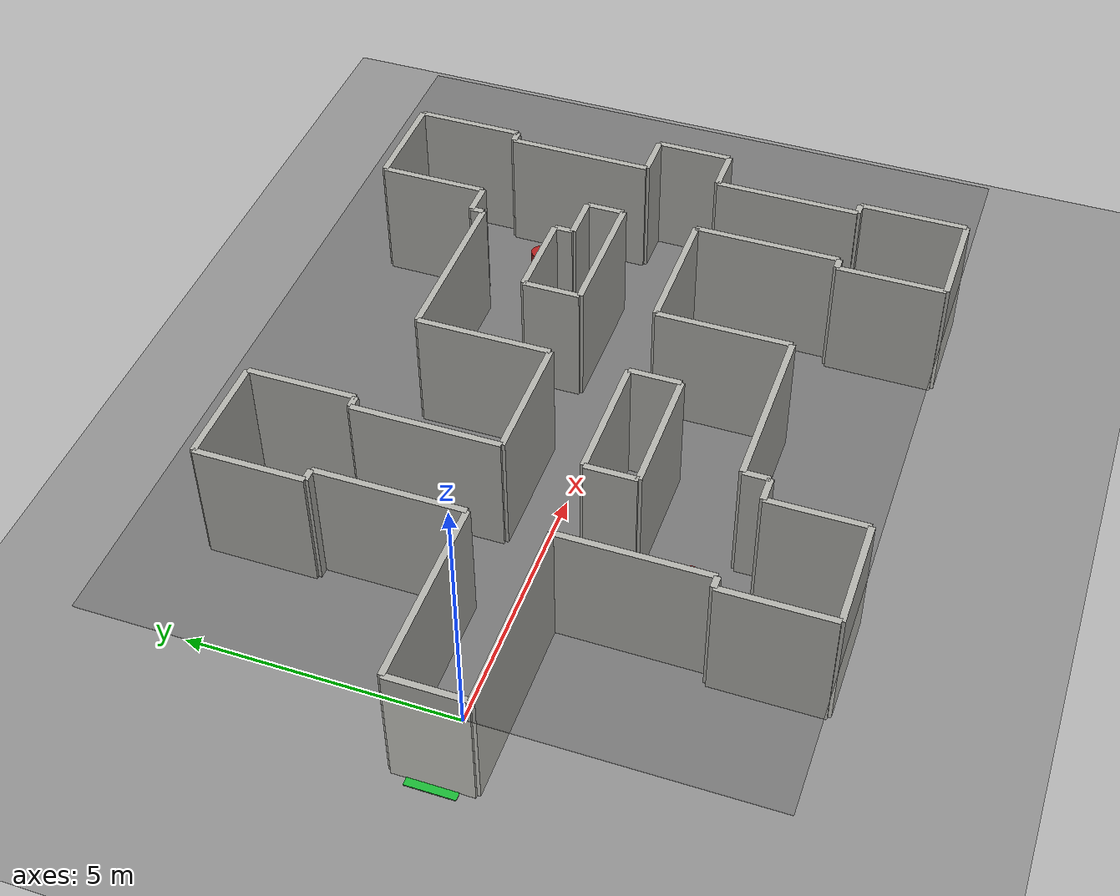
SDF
<sdf version="1.9">
 <world name="nidar_maze_world">
  <physics name="1ms" type="ignore">
   <max_step_size>0.001</max_step_size>
   <real_time_factor>1.0</real_time_factor>
  </physics>
  <plugin filename="gz-sim-physics-system" name="gz::sim::systems::Physics"/>
  <plugin filename="gz-sim-sensors-system" name="gz::sim::systems::Sensors">
   <render_engine>ogre2</render_engine>
  </plugin>
  <plugin filename="gz-sim-user-commands-system" name="gz::sim::systems::UserCommands"/>
  <plugin filename="gz-sim-scene-broadcaster-system" name="gz::sim::systems::SceneBroadcaster"/>
  <plugin filename="gz-sim-imu-system" name="gz::sim::systems::Imu"/>
  <plugin filename="gz-sim-navsat-system" name="gz::sim::systems::NavSat"/>
  <scene><ambient>1.0 1.0 1.0</ambient><background>0.6 0.8 0.9</background></scene>
  <light type="directional" name="sun">
   <pose>0 0 15 0 0 0</pose>
   <diffuse>0.95 0.95 0.95 1</diffuse>
   <specular>0.5 0.5 0.5 1</specular>
   <direction>-0.5 0.2 -0.8</direction>
  </light>
  <model name="ground_plane">
   <static>true</static>
   <link name="link">
    <collision name="collision">
     <geometry><plane><normal>0 0 1</normal><size>16 13</size></plane></geometry>
    </collision>
    <visual name="visual">
     <geometry><plane><normal>0 0 1</normal><size>16 13</size></plane></geometry>
     <material>
      <ambient>0.55 0.55 0.55 1</ambient>
      <diffuse>0.55 0.55 0.55 1</diffuse>
      <specular>0.1 0.1 0.1 1</specular>
     </material>
    </visual>
   </link>
  </model>
  <model name="maze_structure">
   <static>true</static>
   <link name="wall_v1">
    <pose>-1.24 -0.0 1.225 0 0 0</pose>
    <collision name="c"><geometry><box><size>0.12 1.44 2.45</size></box></geometry></collision>
    <visual name="v">
     <geometry><box><size>0.12 1.44 2.45</size></box></geometry>
     <material><ambient>0.85 0.85 0.82 1</ambient><diffuse>0.85 0.85 0.82 1</diffuse></material>
    </visual>
   </link>
   <link name="wall_v2">
    <pose>2.0 -4.5 1.225 0 0 0</pose>
    <collision name="c"><geometry><box><size>0.12 2.04 2.45</size></box></geometry></collision>
    <visual name="v">
     <geometry><box><size>0.12 2.04 2.45</size></box></geometry>
     <material><ambient>0.85 0.85 0.82 1</ambient><diffuse>0.85 0.85 0.82 1</diffuse></material>
    </visual>
   </link>
   <link name="wall_v3">
    <pose>2.0 4.5 1.225 0 0 0</pose>
    <collision name="c"><geometry><box><size>0.12 2.04 2.45</size></box></geometry></collision>
    <visual name="v">
     <geometry><box><size>0.12 2.04 2.45</size></box></geometry>
     <material><ambient>0.85 0.85 0.82 1</ambient><diffuse>0.85 0.85 0.82 1</diffuse></material>
    </visual>
   </link>
   <link name="wall_v4">
    <pose>2.24 -2.1 1.225 0 0 0</pose>
    <collision name="c"><geometry><box><size>0.12 2.76 2.45</size></box></geometry></collision>
    <visual name="v">
     <geometry><box><size>0.12 2.76 2.45</size></box></geometry>
     <material><ambient>0.85 0.85 0.82 1</ambient><diffuse>0.85 0.85 0.82 1</diffuse></material>
    </visual>
   </link>
   <link name="wall_v5">
    <pose>2.24 2.1 1.225 0 0 0</pose>
    <collision name="c"><geometry><box><size>0.12 2.76 2.45</size></box></geometry></collision>
    <visual name="v">
     <geometry><box><size>0.12 2.76 2.45</size></box></geometry>
     <material><ambient>0.85 0.85 0.82 1</ambient><diffuse>0.85 0.85 0.82 1</diffuse></material>
    </visual>
   </link>
   <link name="wall_v6">
    <pose>3.8 -1.2 1.225 0 0 0</pose>
    <collision name="c"><geometry><box><size>0.12 0.96 2.45</size></box></geometry></collision>
    <visual name="v">
     <geometry><box><size>0.12 0.96 2.45</size></box></geometry>
     <material><ambient>0.85 0.85 0.82 1</ambient><diffuse>0.85 0.85 0.82 1</diffuse></material>
    </visual>
   </link>
   <link name="wall_v7">
    <pose>3.8 2.1 1.225 0 0 0</pose>
    <collision name="c"><geometry><box><size>0.12 2.76 2.45</size></box></geometry></collision>
    <visual name="v">
     <geometry><box><size>0.12 2.76 2.45</size></box></geometry>
     <material><ambient>0.85 0.85 0.82 1</ambient><diffuse>0.85 0.85 0.82 1</diffuse></material>
    </visual>
   </link>
   <link name="wall_v8">
    <pose>4.04 -4.62 1.225 0 0 0</pose>
    <collision name="c"><geometry><box><size>0.12 1.8 2.45</size></box></geometry></collision>
    <visual name="v">
     <geometry><box><size>0.12 1.8 2.45</size></box></geometry>
     <material><ambient>0.85 0.85 0.82 1</ambient><diffuse>0.85 0.85 0.82 1</diffuse></material>
    </visual>
   </link>
   <link name="wall_v9">
    <pose>4.04 4.5 1.225 0 0 0</pose>
    <collision name="c"><geometry><box><size>0.12 2.04 2.45</size></box></geometry></collision>
    <visual name="v">
     <geometry><box><size>0.12 2.04 2.45</size></box></geometry>
     <material><ambient>0.85 0.85 0.82 1</ambient><diffuse>0.85 0.85 0.82 1</diffuse></material>
    </visual>
   </link>
   <link name="wall_v10">
    <pose>4.52 -3.48 1.225 0 0 0</pose>
    <collision name="c"><geometry><box><size>0.12 0.48 2.45</size></box></geometry></collision>
    <visual name="v">
     <geometry><box><size>0.12 0.48 2.45</size></box></geometry>
     <material><ambient>0.85 0.85 0.82 1</ambient><diffuse>0.85 0.85 0.82 1</diffuse></material>
    </visual>
   </link>
   <link name="wall_v11">
    <pose>6.2 -1.2 1.225 0 0 0</pose>
    <collision name="c"><geometry><box><size>0.12 0.96 2.45</size></box></geometry></collision>
    <visual name="v">
     <geometry><box><size>0.12 0.96 2.45</size></box></geometry>
     <material><ambient>0.85 0.85 0.82 1</ambient><diffuse>0.85 0.85 0.82 1</diffuse></material>
    </visual>
   </link>
   <link name="wall_v12">
    <pose>6.2 1.98 1.225 0 0 0</pose>
    <collision name="c"><geometry><box><size>0.12 2.52 2.45</size></box></geometry></collision>
    <visual name="v">
     <geometry><box><size>0.12 2.52 2.45</size></box></geometry>
     <material><ambient>0.85 0.85 0.82 1</ambient><diffuse>0.85 0.85 0.82 1</diffuse></material>
    </visual>
   </link>
   <link name="wall_v13">
    <pose>7.76 -1.98 1.225 0 0 0</pose>
    <collision name="c"><geometry><box><size>0.12 2.52 2.45</size></box></geometry></collision>
    <visual name="v">
     <geometry><box><size>0.12 2.52 2.45</size></box></geometry>
     <material><ambient>0.85 0.85 0.82 1</ambient><diffuse>0.85 0.85 0.82 1</diffuse></material>
    </visual>
   </link>
   <link name="wall_v14">
    <pose>7.76 1.26 1.225 0 0 0</pose>
    <collision name="c"><geometry><box><size>0.12 1.08 2.45</size></box></geometry></collision>
    <visual name="v">
     <geometry><box><size>0.12 1.08 2.45</size></box></geometry>
     <material><ambient>0.85 0.85 0.82 1</ambient><diffuse>0.85 0.85 0.82 1</diffuse></material>
    </visual>
   </link>
   <link name="wall_v15">
    <pose>9.44 1.62 1.225 0 0 0</pose>
    <collision name="c"><geometry><box><size>0.12 0.36 2.45</size></box></geometry></collision>
    <visual name="v">
     <geometry><box><size>0.12 0.36 2.45</size></box></geometry>
     <material><ambient>0.85 0.85 0.82 1</ambient><diffuse>0.85 0.85 0.82 1</diffuse></material>
    </visual>
   </link>
   <link name="wall_v16">
    <pose>9.44 3.36 1.225 0 0 0</pose>
    <collision name="c"><geometry><box><size>0.12 0.24 2.45</size></box></geometry></collision>
    <visual name="v">
     <geometry><box><size>0.12 0.24 2.45</size></box></geometry>
     <material><ambient>0.85 0.85 0.82 1</ambient><diffuse>0.85 0.85 0.82 1</diffuse></material>
    </visual>
   </link>
   <link name="wall_v17">
    <pose>10.04 -4.5 1.225 0 0 0</pose>
    <collision name="c"><geometry><box><size>0.12 2.04 2.45</size></box></geometry></collision>
    <visual name="v">
     <geometry><box><size>0.12 2.04 2.45</size></box></geometry>
     <material><ambient>0.85 0.85 0.82 1</ambient><diffuse>0.85 0.85 0.82 1</diffuse></material>
    </visual>
   </link>
   <link name="wall_v18">
    <pose>10.04 4.5 1.225 0 0 0</pose>
    <collision name="c"><geometry><box><size>0.12 2.04 2.45</size></box></geometry></collision>
    <visual name="v">
     <geometry><box><size>0.12 2.04 2.45</size></box></geometry>
     <material><ambient>0.85 0.85 0.82 1</ambient><diffuse>0.85 0.85 0.82 1</diffuse></material>
    </visual>
   </link>
   <link name="wall_v19">
    <pose>10.28 -2.1 1.225 0 0 0</pose>
    <collision name="c"><geometry><box><size>0.12 2.76 2.45</size></box></geometry></collision>
    <visual name="v">
     <geometry><box><size>0.12 2.76 2.45</size></box></geometry>
     <material><ambient>0.85 0.85 0.82 1</ambient><diffuse>0.85 0.85 0.82 1</diffuse></material>
    </visual>
   </link>
   <link name="wall_v20">
    <pose>10.28 1.08 1.225 0 0 0</pose>
    <collision name="c"><geometry><box><size>0.12 0.72 2.45</size></box></geometry></collision>
    <visual name="v">
     <geometry><box><size>0.12 0.72 2.45</size></box></geometry>
     <material><ambient>0.85 0.85 0.82 1</ambient><diffuse>0.85 0.85 0.82 1</diffuse></material>
    </visual>
   </link>
   <link name="wall_v21">
    <pose>11.72 -2.1 1.225 0 0 0</pose>
    <collision name="c"><geometry><box><size>0.12 2.76 2.45</size></box></geometry></collision>
    <visual name="v">
     <geometry><box><size>0.12 2.76 2.45</size></box></geometry>
     <material><ambient>0.85 0.85 0.82 1</ambient><diffuse>0.85 0.85 0.82 1</diffuse></material>
    </visual>
   </link>
   <link name="wall_v22">
    <pose>11.72 2.1 1.225 0 0 0</pose>
    <collision name="c"><geometry><box><size>0.12 2.76 2.45</size></box></geometry></collision>
    <visual name="v">
     <geometry><box><size>0.12 2.76 2.45</size></box></geometry>
     <material><ambient>0.85 0.85 0.82 1</ambient><diffuse>0.85 0.85 0.82 1</diffuse></material>
    </visual>
   </link>
   <link name="wall_v23">
    <pose>11.96 -4.5 1.225 0 0 0</pose>
    <collision name="c"><geometry><box><size>0.12 2.04 2.45</size></box></geometry></collision>
    <visual name="v">
     <geometry><box><size>0.12 2.04 2.45</size></box></geometry>
     <material><ambient>0.85 0.85 0.82 1</ambient><diffuse>0.85 0.85 0.82 1</diffuse></material>
    </visual>
   </link>
   <link name="wall_v24">
    <pose>11.96 4.5 1.225 0 0 0</pose>
    <collision name="c"><geometry><box><size>0.12 2.04 2.45</size></box></geometry></collision>
    <visual name="v">
     <geometry><box><size>0.12 2.04 2.45</size></box></geometry>
     <material><ambient>0.85 0.85 0.82 1</ambient><diffuse>0.85 0.85 0.82 1</diffuse></material>
    </visual>
   </link>
   <link name="wall_v25">
    <pose>12.56 -0.0 1.225 0 0 0</pose>
    <collision name="c"><geometry><box><size>0.12 1.44 2.45</size></box></geometry></collision>
    <visual name="v">
     <geometry><box><size>0.12 1.44 2.45</size></box></geometry>
     <material><ambient>0.85 0.85 0.82 1</ambient><diffuse>0.85 0.85 0.82 1</diffuse></material>
    </visual>
   </link>
   <link name="wall_h26">
    <pose>3.02 -5.52 1.225 0 0 0</pose>
    <collision name="c"><geometry><box><size>2.04 0.12 2.45</size></box></geometry></collision>
    <visual name="v">
     <geometry><box><size>2.04 0.12 2.45</size></box></geometry>
     <material><ambient>0.85 0.85 0.82 1</ambient><diffuse>0.85 0.85 0.82 1</diffuse></material>
    </visual>
   </link>
   <link name="wall_h27">
    <pose>11.0 -5.52 1.225 0 0 0</pose>
    <collision name="c"><geometry><box><size>1.92 0.12 2.45</size></box></geometry></collision>
    <visual name="v">
     <geometry><box><size>1.92 0.12 2.45</size></box></geometry>
     <material><ambient>0.85 0.85 0.82 1</ambient><diffuse>0.85 0.85 0.82 1</diffuse></material>
    </visual>
   </link>
   <link name="wall_h28">
    <pose>4.28 -3.72 1.225 0 0 0</pose>
    <collision name="c"><geometry><box><size>0.48 0.12 2.45</size></box></geometry></collision>
    <visual name="v">
     <geometry><box><size>0.48 0.12 2.45</size></box></geometry>
     <material><ambient>0.85 0.85 0.82 1</ambient><diffuse>0.85 0.85 0.82 1</diffuse></material>
    </visual>
   </link>
   <link name="wall_h29">
    <pose>2.12 -3.48 1.225 0 0 0</pose>
    <collision name="c"><geometry><box><size>0.24 0.12 2.45</size></box></geometry></collision>
    <visual name="v">
     <geometry><box><size>0.24 0.12 2.45</size></box></geometry>
     <material><ambient>0.85 0.85 0.82 1</ambient><diffuse>0.85 0.85 0.82 1</diffuse></material>
    </visual>
   </link>
   <link name="wall_h30">
    <pose>10.16 -3.48 1.225 0 0 0</pose>
    <collision name="c"><geometry><box><size>0.24 0.12 2.45</size></box></geometry></collision>
    <visual name="v">
     <geometry><box><size>0.24 0.12 2.45</size></box></geometry>
     <material><ambient>0.85 0.85 0.82 1</ambient><diffuse>0.85 0.85 0.82 1</diffuse></material>
    </visual>
   </link>
   <link name="wall_h31">
    <pose>11.84 -3.48 1.225 0 0 0</pose>
    <collision name="c"><geometry><box><size>0.24 0.12 2.45</size></box></geometry></collision>
    <visual name="v">
     <geometry><box><size>0.24 0.12 2.45</size></box></geometry>
     <material><ambient>0.85 0.85 0.82 1</ambient><diffuse>0.85 0.85 0.82 1</diffuse></material>
    </visual>
   </link>
   <link name="wall_h32">
    <pose>6.14 -3.24 1.225 0 0 0</pose>
    <collision name="c"><geometry><box><size>3.24 0.12 2.45</size></box></geometry></collision>
    <visual name="v">
     <geometry><box><size>3.24 0.12 2.45</size></box></geometry>
     <material><ambient>0.85 0.85 0.82 1</ambient><diffuse>0.85 0.85 0.82 1</diffuse></material>
    </visual>
   </link>
   <link name="wall_h33">
    <pose>5.0 -1.68 1.225 0 0 0</pose>
    <collision name="c"><geometry><box><size>2.4 0.12 2.45</size></box></geometry></collision>
    <visual name="v">
     <geometry><box><size>2.4 0.12 2.45</size></box></geometry>
     <material><ambient>0.85 0.85 0.82 1</ambient><diffuse>0.85 0.85 0.82 1</diffuse></material>
    </visual>
   </link>
   <link name="wall_h34">
    <pose>0.5 -0.72 1.225 0 0 0</pose>
    <collision name="c"><geometry><box><size>3.48 0.12 2.45</size></box></geometry></collision>
    <visual name="v">
     <geometry><box><size>3.48 0.12 2.45</size></box></geometry>
     <material><ambient>0.85 0.85 0.82 1</ambient><diffuse>0.85 0.85 0.82 1</diffuse></material>
    </visual>
   </link>
   <link name="wall_h35">
    <pose>5.0 -0.72 1.225 0 0 0</pose>
    <collision name="c"><geometry><box><size>2.4 0.12 2.45</size></box></geometry></collision>
    <visual name="v">
     <geometry><box><size>2.4 0.12 2.45</size></box></geometry>
     <material><ambient>0.85 0.85 0.82 1</ambient><diffuse>0.85 0.85 0.82 1</diffuse></material>
    </visual>
   </link>
   <link name="wall_h36">
    <pose>9.02 -0.72 1.225 0 0 0</pose>
    <collision name="c"><geometry><box><size>2.52 0.12 2.45</size></box></geometry></collision>
    <visual name="v">
     <geometry><box><size>2.52 0.12 2.45</size></box></geometry>
     <material><ambient>0.85 0.85 0.82 1</ambient><diffuse>0.85 0.85 0.82 1</diffuse></material>
    </visual>
   </link>
   <link name="wall_h37">
    <pose>12.14 -0.72 1.225 0 0 0</pose>
    <collision name="c"><geometry><box><size>0.84 0.12 2.45</size></box></geometry></collision>
    <visual name="v">
     <geometry><box><size>0.84 0.12 2.45</size></box></geometry>
     <material><ambient>0.85 0.85 0.82 1</ambient><diffuse>0.85 0.85 0.82 1</diffuse></material>
    </visual>
   </link>
   <link name="wall_h38">
    <pose>0.5 0.72 1.225 0 0 0</pose>
    <collision name="c"><geometry><box><size>3.48 0.12 2.45</size></box></geometry></collision>
    <visual name="v">
     <geometry><box><size>3.48 0.12 2.45</size></box></geometry>
     <material><ambient>0.85 0.85 0.82 1</ambient><diffuse>0.85 0.85 0.82 1</diffuse></material>
    </visual>
   </link>
   <link name="wall_h39">
    <pose>5.0 0.72 1.225 0 0 0</pose>
    <collision name="c"><geometry><box><size>2.4 0.12 2.45</size></box></geometry></collision>
    <visual name="v">
     <geometry><box><size>2.4 0.12 2.45</size></box></geometry>
     <material><ambient>0.85 0.85 0.82 1</ambient><diffuse>0.85 0.85 0.82 1</diffuse></material>
    </visual>
   </link>
   <link name="wall_h40">
    <pose>9.02 0.72 1.225 0 0 0</pose>
    <collision name="c"><geometry><box><size>2.52 0.12 2.45</size></box></geometry></collision>
    <visual name="v">
     <geometry><box><size>2.52 0.12 2.45</size></box></geometry>
     <material><ambient>0.85 0.85 0.82 1</ambient><diffuse>0.85 0.85 0.82 1</diffuse></material>
    </visual>
   </link>
   <link name="wall_h41">
    <pose>12.14 0.72 1.225 0 0 0</pose>
    <collision name="c"><geometry><box><size>0.84 0.12 2.45</size></box></geometry></collision>
    <visual name="v">
     <geometry><box><size>0.84 0.12 2.45</size></box></geometry>
     <material><ambient>0.85 0.85 0.82 1</ambient><diffuse>0.85 0.85 0.82 1</diffuse></material>
    </visual>
   </link>
   <link name="wall_h42">
    <pose>9.86 1.44 1.225 0 0 0</pose>
    <collision name="c"><geometry><box><size>0.84 0.12 2.45</size></box></geometry></collision>
    <visual name="v">
     <geometry><box><size>0.84 0.12 2.45</size></box></geometry>
     <material><ambient>0.85 0.85 0.82 1</ambient><diffuse>0.85 0.85 0.82 1</diffuse></material>
    </visual>
   </link>
   <link name="wall_h43">
    <pose>8.6 1.8 1.225 0 0 0</pose>
    <collision name="c"><geometry><box><size>1.68 0.12 2.45</size></box></geometry></collision>
    <visual name="v">
     <geometry><box><size>1.68 0.12 2.45</size></box></geometry>
     <material><ambient>0.85 0.85 0.82 1</ambient><diffuse>0.85 0.85 0.82 1</diffuse></material>
    </visual>
   </link>
   <link name="wall_h44">
    <pose>7.82 3.24 1.225 0 0 0</pose>
    <collision name="c"><geometry><box><size>3.24 0.12 2.45</size></box></geometry></collision>
    <visual name="v">
     <geometry><box><size>3.24 0.12 2.45</size></box></geometry>
     <material><ambient>0.85 0.85 0.82 1</ambient><diffuse>0.85 0.85 0.82 1</diffuse></material>
    </visual>
   </link>
   <link name="wall_h45">
    <pose>2.12 3.48 1.225 0 0 0</pose>
    <collision name="c"><geometry><box><size>0.24 0.12 2.45</size></box></geometry></collision>
    <visual name="v">
     <geometry><box><size>0.24 0.12 2.45</size></box></geometry>
     <material><ambient>0.85 0.85 0.82 1</ambient><diffuse>0.85 0.85 0.82 1</diffuse></material>
    </visual>
   </link>
   <link name="wall_h46">
    <pose>3.92 3.48 1.225 0 0 0</pose>
    <collision name="c"><geometry><box><size>0.24 0.12 2.45</size></box></geometry></collision>
    <visual name="v">
     <geometry><box><size>0.24 0.12 2.45</size></box></geometry>
     <material><ambient>0.85 0.85 0.82 1</ambient><diffuse>0.85 0.85 0.82 1</diffuse></material>
    </visual>
   </link>
   <link name="wall_h47">
    <pose>9.74 3.48 1.225 0 0 0</pose>
    <collision name="c"><geometry><box><size>0.6 0.12 2.45</size></box></geometry></collision>
    <visual name="v">
     <geometry><box><size>0.6 0.12 2.45</size></box></geometry>
     <material><ambient>0.85 0.85 0.82 1</ambient><diffuse>0.85 0.85 0.82 1</diffuse></material>
    </visual>
   </link>
   <link name="wall_h48">
    <pose>11.84 3.48 1.225 0 0 0</pose>
    <collision name="c"><geometry><box><size>0.24 0.12 2.45</size></box></geometry></collision>
    <visual name="v">
     <geometry><box><size>0.24 0.12 2.45</size></box></geometry>
     <material><ambient>0.85 0.85 0.82 1</ambient><diffuse>0.85 0.85 0.82 1</diffuse></material>
    </visual>
   </link>
   <link name="wall_h49">
    <pose>3.02 5.52 1.225 0 0 0</pose>
    <collision name="c"><geometry><box><size>2.04 0.12 2.45</size></box></geometry></collision>
    <visual name="v">
     <geometry><box><size>2.04 0.12 2.45</size></box></geometry>
     <material><ambient>0.85 0.85 0.82 1</ambient><diffuse>0.85 0.85 0.82 1</diffuse></material>
    </visual>
   </link>
   <link name="wall_h50">
    <pose>11.0 5.52 1.225 0 0 0</pose>
    <collision name="c"><geometry><box><size>1.92 0.12 2.45</size></box></geometry></collision>
    <visual name="v">
     <geometry><box><size>1.92 0.12 2.45</size></box></geometry>
     <material><ambient>0.85 0.85 0.82 1</ambient><diffuse>0.85 0.85 0.82 1</diffuse></material>
    </visual>
   </link>
  </model>
  <model name="arena_net_cover">
   <static>true</static>
   <link name="net">
    <pose>5.8 0.0 2.48 0 0 0</pose>
    <visual name="v">
     <geometry><box><size>14.799999999999999 11.4 0.03</size></box></geometry>
     <material>
      <ambient>0.2 0.2 0.2 0.25</ambient>
      <diffuse>0.2 0.2 0.2 0.25</diffuse>
      <specular>0.1 0.1 0.1 0.1</specular>
     </material>
    </visual>
   </link>
  </model>
  <model name="survivor_1">
   <static>true</static>
   <pose>3.0 4.5 0.4 0 0 0</pose>
   <link name="body">
    <visual name="v">
     <geometry><cylinder><radius>0.18</radius><length>0.8</length></cylinder></geometry>
     <material><ambient>0.85 0.1 0.1 1</ambient><diffuse>0.85 0.1 0.1 1</diffuse></material>
    </visual>
    <collision name="c">
     <geometry><cylinder><radius>0.18</radius><length>0.8</length></cylinder></geometry>
    </collision>
   </link>
  </model>
  <model name="survivor_2">
   <static>true</static>
   <pose>3.0 -4.5 0.4 0 0 0</pose>
   <link name="body">
    <visual name="v">
     <geometry><cylinder><radius>0.18</radius><length>0.8</length></cylinder></geometry>
     <material><ambient>0.85 0.1 0.1 1</ambient><diffuse>0.85 0.1 0.1 1</diffuse></material>
    </visual>
    <collision name="c">
     <geometry><cylinder><radius>0.18</radius><length>0.8</length></cylinder></geometry>
    </collision>
   </link>
  </model>
  <model name="survivor_3">
   <static>true</static>
   <pose>10.5 2.5 0.4 0 0 0</pose>
   <link name="body">
    <visual name="v">
     <geometry><cylinder><radius>0.18</radius><length>0.8</length></cylinder></geometry>
     <material><ambient>0.85 0.1 0.1 1</ambient><diffuse>0.85 0.1 0.1 1</diffuse></material>
    </visual>
    <collision name="c">
     <geometry><cylinder><radius>0.18</radius><length>0.8</length></cylinder></geometry>
    </collision>
   </link>
  </model>
  <model name="survivor_4">
   <static>true</static>
   <pose>3.5 -2.7 0.4 0 0 0</pose>
   <link name="body">
    <visual name="v">
     <geometry><cylinder><radius>0.18</radius><length>0.8</length></cylinder></geometry>
     <material><ambient>0.85 0.1 0.1 1</ambient><diffuse>0.85 0.1 0.1 1</diffuse></material>
    </visual>
    <collision name="c">
     <geometry><cylinder><radius>0.18</radius><length>0.8</length></cylinder></geometry>
    </collision>
   </link>
  </model>
  <model name="survivor_5">
   <static>true</static>
   <pose>11.0 4.5 0.4 0 0 0</pose>
   <link name="body">
    <visual name="v">
     <geometry><cylinder><radius>0.18</radius><length>0.8</length></cylinder></geometry>
     <material><ambient>0.85 0.1 0.1 1</ambient><diffuse>0.85 0.1 0.1 1</diffuse></material>
    </visual>
    <collision name="c">
     <geometry><cylinder><radius>0.18</radius><length>0.8</length></cylinder></geometry>
    </collision>
   </link>
  </model>
  <model name="survivor_6">
   <static>true</static>
   <pose>11.0 -4.5 0.4 0 0 0</pose>
   <link name="body">
    <visual name="v">
     <geometry><cylinder><radius>0.18</radius><length>0.8</length></cylinder></geometry>
     <material><ambient>0.85 0.1 0.1 1</ambient><diffuse>0.85 0.1 0.1 1</diffuse></material>
    </visual>
    <collision name="c">
     <geometry><cylinder><radius>0.18</radius><length>0.8</length></cylinder></geometry>
    </collision>
   </link>
  </model>
  <model name="entry_exit_pad">
   <static>true</static>
   <pose>-1.0 0 0.01 0 0 0</pose>
   <link name="pad">
    <visual name="v">
     <geometry><box><size>0.9 0.9 0.02</size></box></geometry>
     <material><ambient>0.1 0.7 0.2 0.9</ambient><diffuse>0.1 0.7 0.2 0.9</diffuse></material>
    </visual>
   </link>
  </model>
 </world>
</sdf>
